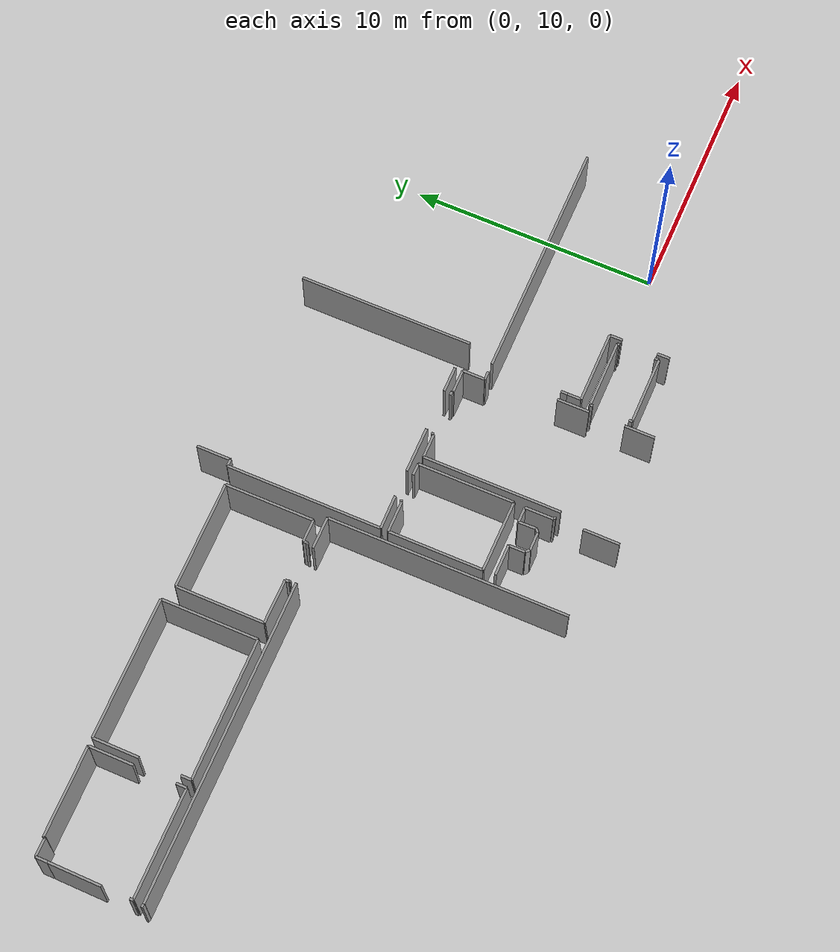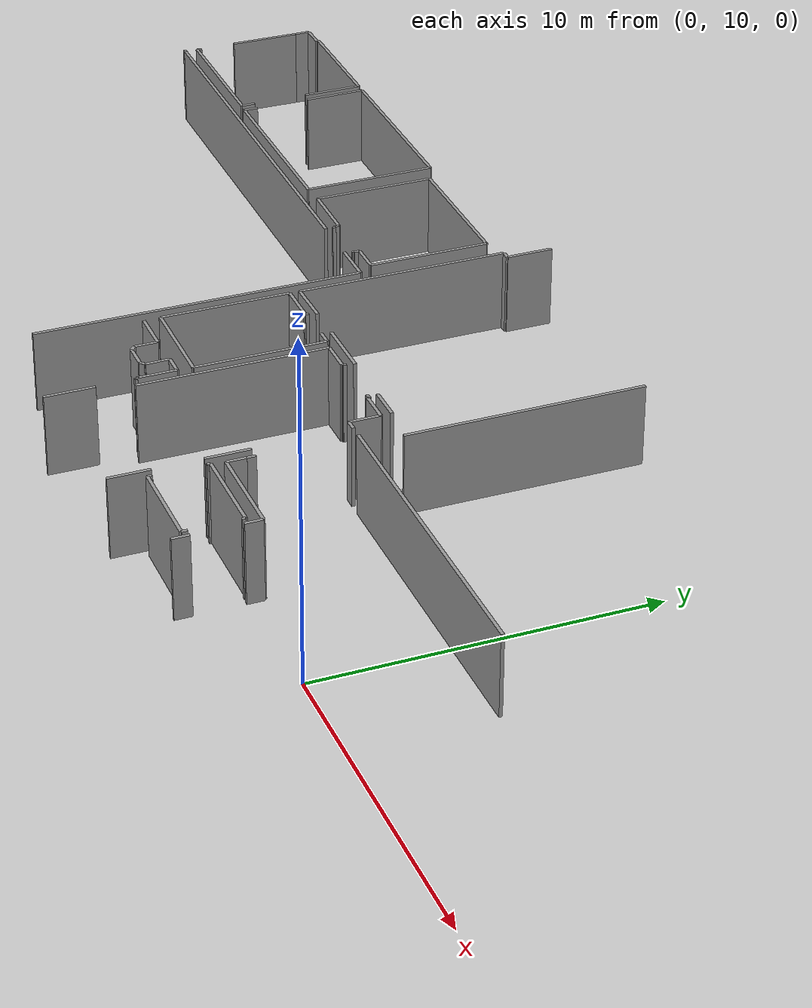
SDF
<sdf version="1.6">
 <world name="default">
  <model name="ground_plane">
   <static>1</static>
   <link name="link">
    <collision name="collision">
     <geometry><plane><normal>0 0 1</normal><size>100 100</size></plane></geometry>
     <surface><friction><ode><mu>100</mu><mu2>50</mu2></ode></friction></surface>
    </collision>
    <visual name="visual">
     <cast_shadows>0</cast_shadows>
     <geometry><plane><normal>0 0 1</normal><size>100 100</size></plane></geometry>
     <material>
      <script><uri>file://media/materials/scripts/gazebo.material</uri><name>Gazebo/Grey</name></script>
     </material>
    </visual>
   </link>
  </model>
  <model name="0510035739_A_40_1_102">
   <static>1</static>
   <link name="Wall_260">
    <collision name="Wall_260_Collision">
     <geometry><box><size>13.2200164804 0.1 2.5</size></box></geometry>
     <pose>6.61000824022 0 1.25 0 0 0</pose>
    </collision>
    <visual name="Wall_260_Visual">
     <pose>6.61000824022 0 1.25 0 0 0</pose>
     <geometry><box><size>13.2200164804 0.1 2.5</size></box></geometry>
     <material>
      <script><uri>file://media/materials/scripts/gazebo.material</uri><name>Gazebo/Grey</name></script>
      <ambient>1 1 1 1</ambient>
     </material>
    </visual>
    <pose>61.3579427718 -32.5064667277 0 0 0 0.0</pose>
   </link>
   <link name="Wall_261">
    <collision name="Wall_261_Collision">
     <geometry><box><size>1.33244520634 0.1 2.5</size></box></geometry>
     <pose>0.666222603172 0 1.25 0 0 0</pose>
    </collision>
    <visual name="Wall_261_Visual">
     <pose>0.666222603172 0 1.25 0 0 0</pose>
     <geometry><box><size>1.33244520634 0.1 2.5</size></box></geometry>
     <material>
      <script><uri>file://media/materials/scripts/gazebo.material</uri><name>Gazebo/Grey</name></script>
      <ambient>1 1 1 1</ambient>
     </material>
    </visual>
    <pose>76.0976243452 -32.5064667277 0 0 0 0.0</pose>
   </link>
   <link name="Wall_262">
    <collision name="Wall_262_Collision">
     <geometry><box><size>9.85795487109 0.1 2.5</size></box></geometry>
     <pose>4.92897743555 0 1.25 0 0 0</pose>
    </collision>
    <visual name="Wall_262_Visual">
     <pose>4.92897743555 0 1.25 0 0 0</pose>
     <geometry><box><size>9.85795487109 0.1 2.5</size></box></geometry>
     <material>
      <script><uri>file://media/materials/scripts/gazebo.material</uri><name>Gazebo/Grey</name></script>
      <ambient>1 1 1 1</ambient>
     </material>
    </visual>
    <pose>77.4300695516 -32.5064667277 0 0 0 -1.57079632679</pose>
   </link>
   <link name="Wall_271">
    <collision name="Wall_271_Collision">
     <geometry><box><size>0.143887569685 0.1 2.5</size></box></geometry>
     <pose>0.0719437848426 0 1.25 0 0 0</pose>
    </collision>
    <visual name="Wall_271_Visual">
     <pose>0.0719437848426 0 1.25 0 0 0</pose>
     <geometry><box><size>0.143887569685 0.1 2.5</size></box></geometry>
     <material>
      <script><uri>file://media/materials/scripts/gazebo.material</uri><name>Gazebo/Grey</name></script>
      <ambient>1 1 1 1</ambient>
     </material>
    </visual>
    <pose>61.2147896069 -32.4919476345 0 0 0 -0.101077846556</pose>
   </link>
   <link name="Wall_272">
    <collision name="Wall_272_Collision">
     <geometry><box><size>0.481167844539 0.1 2.5</size></box></geometry>
     <pose>0.240583922269 0 1.25 0 0 0</pose>
    </collision>
    <visual name="Wall_272_Visual">
     <pose>0.240583922269 0 1.25 0 0 0</pose>
     <geometry><box><size>0.481167844539 0.1 2.5</size></box></geometry>
     <material>
      <script><uri>file://media/materials/scripts/gazebo.material</uri><name>Gazebo/Grey</name></script>
      <ambient>1 1 1 1</ambient>
     </material>
    </visual>
    <pose>61.3579427718 -28.6690958553 0 0 0 1.57079632679</pose>
   </link>
   <link name="Wall_273">
    <collision name="Wall_273_Collision">
     <geometry><box><size>0.759832546458 0.1 2.5</size></box></geometry>
     <pose>0.379916273229 0 1.25 0 0 0</pose>
    </collision>
    <visual name="Wall_273_Visual">
     <pose>0.379916273229 0 1.25 0 0 0</pose>
     <geometry><box><size>0.759832546458 0.1 2.5</size></box></geometry>
     <material>
      <script><uri>file://media/materials/scripts/gazebo.material</uri><name>Gazebo/Grey</name></script>
      <ambient>1 1 1 1</ambient>
     </material>
    </visual>
    <pose>61.3579427718 -28.1879280108 0 0 0 0.0</pose>
   </link>
   <link name="Wall_274">
    <collision name="Wall_274_Collision">
     <geometry><box><size>0.063425512594 0.1 2.5</size></box></geometry>
     <pose>0.031712756297 0 1.25 0 0 0</pose>
    </collision>
    <visual name="Wall_274_Visual">
     <pose>0.031712756297 0 1.25 0 0 0</pose>
     <geometry><box><size>0.063425512594 0.1 2.5</size></box></geometry>
     <material>
      <script><uri>file://media/materials/scripts/gazebo.material</uri><name>Gazebo/Grey</name></script>
      <ambient>1 1 1 1</ambient>
     </material>
    </visual>
    <pose>62.1177753183 -28.1879280108 0 0 0 1.57079632679</pose>
   </link>
   <link name="Wall_275">
    <collision name="Wall_275_Collision">
     <geometry><box><size>3.71051984722 0.1 2.5</size></box></geometry>
     <pose>1.85525992361 0 1.25 0 0 0</pose>
    </collision>
    <visual name="Wall_275_Visual">
     <pose>1.85525992361 0 1.25 0 0 0</pose>
     <geometry><box><size>3.71051984722 0.1 2.5</size></box></geometry>
     <material>
      <script><uri>file://media/materials/scripts/gazebo.material</uri><name>Gazebo/Grey</name></script>
      <ambient>1 1 1 1</ambient>
     </material>
    </visual>
    <pose>62.1177753183 -28.1245024982 0 0 0 0.0</pose>
   </link>
   <link name="Wall_276">
    <collision name="Wall_276_Collision">
     <geometry><box><size>1.82380188825 0.1 2.5</size></box></geometry>
     <pose>0.911900944123 0 1.25 0 0 0</pose>
    </collision>
    <visual name="Wall_276_Visual">
     <pose>0.911900944123 0 1.25 0 0 0</pose>
     <geometry><box><size>1.82380188825 0.1 2.5</size></box></geometry>
     <material>
      <script><uri>file://media/materials/scripts/gazebo.material</uri><name>Gazebo/Grey</name></script>
      <ambient>1 1 1 1</ambient>
     </material>
    </visual>
    <pose>65.8282951655 -28.1245024982 0 0 0 -1.57079632679</pose>
   </link>
   <link name="Wall_277">
    <collision name="Wall_277_Collision">
     <geometry><box><size>0.421308425022 0.1 2.5</size></box></geometry>
     <pose>0.210654212511 0 1.25 0 0 0</pose>
    </collision>
    <visual name="Wall_277_Visual">
     <pose>0.210654212511 0 1.25 0 0 0</pose>
     <geometry><box><size>0.421308425022 0.1 2.5</size></box></geometry>
     <material>
      <script><uri>file://media/materials/scripts/gazebo.material</uri><name>Gazebo/Grey</name></script>
      <ambient>1 1 1 1</ambient>
     </material>
    </visual>
    <pose>65.8282951655 -31.6776048081 0 0 0 -1.57079632679</pose>
   </link>
   <link name="Wall_278">
    <collision name="Wall_278_Collision">
     <geometry><box><size>4.49531504522 0.1 2.5</size></box></geometry>
     <pose>2.24765752261 0 1.25 0 0 0</pose>
    </collision>
    <visual name="Wall_278_Visual">
     <pose>2.24765752261 0 1.25 0 0 0</pose>
     <geometry><box><size>4.49531504522 0.1 2.5</size></box></geometry>
     <material>
      <script><uri>file://media/materials/scripts/gazebo.material</uri><name>Gazebo/Grey</name></script>
      <ambient>1 1 1 1</ambient>
     </material>
    </visual>
    <pose>65.8282951655 -32.0989132331 0 0 0 3.14159265359</pose>
   </link>
   <link name="Wall_279">
    <collision name="Wall_279_Collision">
     <geometry><box><size>0.14366260684 0.1 2.5</size></box></geometry>
     <pose>0.0718313034198 0 1.25 0 0 0</pose>
    </collision>
    <visual name="Wall_279_Visual">
     <pose>0.0718313034198 0 1.25 0 0 0</pose>
     <geometry><box><size>0.14366260684 0.1 2.5</size></box></geometry>
     <material>
      <script><uri>file://media/materials/scripts/gazebo.material</uri><name>Gazebo/Grey</name></script>
      <ambient>1 1 1 1</ambient>
     </material>
    </visual>
    <pose>61.3329801203 -32.0989132331 0 0 0 1.57079632679</pose>
   </link>
   <link name="Wall_280">
    <collision name="Wall_280_Collision">
     <geometry><box><size>2.15686660749 0.1 2.5</size></box></geometry>
     <pose>1.07843330375 0 1.25 0 0 0</pose>
    </collision>
    <visual name="Wall_280_Visual">
     <pose>1.07843330375 0 1.25 0 0 0</pose>
     <geometry><box><size>2.15686660749 0.1 2.5</size></box></geometry>
     <material>
      <script><uri>file://media/materials/scripts/gazebo.material</uri><name>Gazebo/Grey</name></script>
      <ambient>1 1 1 1</ambient>
     </material>
    </visual>
    <pose>61.3329801203 -30.8258180044 0 0 0 1.55922249614</pose>
   </link>
   <link name="Wall_281">
    <collision name="Wall_281_Collision">
     <geometry><box><size>0.429459494914 0.1 2.5</size></box></geometry>
     <pose>0.214729747457 0 1.25 0 0 0</pose>
    </collision>
    <visual name="Wall_281_Visual">
     <pose>0.214729747457 0 1.25 0 0 0</pose>
     <geometry><box><size>0.429459494914 0.1 2.5</size></box></geometry>
     <material>
      <script><uri>file://media/materials/scripts/gazebo.material</uri><name>Gazebo/Grey</name></script>
      <ambient>1 1 1 1</ambient>
     </material>
    </visual>
    <pose>66.1629984729 -32.1363572104 0 0 0 1.57079632679</pose>
   </link>
   <link name="Wall_282">
    <collision name="Wall_282_Collision">
     <geometry><box><size>1.87678384254 0.1 2.5</size></box></geometry>
     <pose>0.938391921271 0 1.25 0 0 0</pose>
    </collision>
    <visual name="Wall_282_Visual">
     <pose>0.938391921271 0 1.25 0 0 0</pose>
     <geometry><box><size>1.87678384254 0.1 2.5</size></box></geometry>
     <material>
      <script><uri>file://media/materials/scripts/gazebo.material</uri><name>Gazebo/Grey</name></script>
      <ambient>1 1 1 1</ambient>
     </material>
    </visual>
    <pose>66.1629984729 -30.0017957826 0 0 0 1.57079632679</pose>
   </link>
   <link name="Wall_283">
    <collision name="Wall_283_Collision">
     <geometry><box><size>5.83743964706 0.1 2.5</size></box></geometry>
     <pose>2.91871982353 0 1.25 0 0 0</pose>
    </collision>
    <visual name="Wall_283_Visual">
     <pose>2.91871982353 0 1.25 0 0 0</pose>
     <geometry><box><size>5.83743964706 0.1 2.5</size></box></geometry>
     <material>
      <script><uri>file://media/materials/scripts/gazebo.material</uri><name>Gazebo/Grey</name></script>
      <ambient>1 1 1 1</ambient>
     </material>
    </visual>
    <pose>66.1629984729 -28.12501194 0 0 0 0.0</pose>
   </link>
   <link name="Wall_284">
    <collision name="Wall_284_Collision">
     <geometry><box><size>3.99198647941 0.1 2.5</size></box></geometry>
     <pose>1.99599323971 0 1.25 0 0 0</pose>
    </collision>
    <visual name="Wall_284_Visual">
     <pose>1.99599323971 0 1.25 0 0 0</pose>
     <geometry><box><size>3.99198647941 0.1 2.5</size></box></geometry>
     <material>
      <script><uri>file://media/materials/scripts/gazebo.material</uri><name>Gazebo/Grey</name></script>
      <ambient>1 1 1 1</ambient>
     </material>
    </visual>
    <pose>72.00043812 -28.12501194 0 0 0 -1.57079632679</pose>
   </link>
   <link name="Wall_285">
    <collision name="Wall_285_Collision">
     <geometry><box><size>5.8374717469 0.1 2.5</size></box></geometry>
     <pose>2.91873587345 0 1.25 0 0 0</pose>
    </collision>
    <visual name="Wall_285_Visual">
     <pose>2.91873587345 0 1.25 0 0 0</pose>
     <geometry><box><size>5.8374717469 0.1 2.5</size></box></geometry>
     <material>
      <script><uri>file://media/materials/scripts/gazebo.material</uri><name>Gazebo/Grey</name></script>
      <ambient>1 1 1 1</ambient>
     </material>
    </visual>
    <pose>72.00043812 -32.1169984195 0 0 0 -3.13827635035</pose>
   </link>
   <link name="Wall_286">
    <collision name="Wall_286_Collision">
     <geometry><box><size>3.64709433462 0.1 2.5</size></box></geometry>
     <pose>1.82354716731 0 1.25 0 0 0</pose>
    </collision>
    <visual name="Wall_286_Visual">
     <pose>1.82354716731 0 1.25 0 0 0</pose>
     <geometry><box><size>3.64709433462 0.1 2.5</size></box></geometry>
     <material>
      <script><uri>file://media/materials/scripts/gazebo.material</uri><name>Gazebo/Grey</name></script>
      <ambient>1 1 1 1</ambient>
     </material>
    </visual>
    <pose>72.6795241304 -32.0629975814 0 0 0 1.57079632679</pose>
   </link>
   <link name="Wall_287">
    <collision name="Wall_287_Collision">
     <geometry><box><size>4.4451350212 0.1 2.5</size></box></geometry>
     <pose>2.2225675106 0 1.25 0 0 0</pose>
    </collision>
    <visual name="Wall_287_Visual">
     <pose>2.2225675106 0 1.25 0 0 0</pose>
     <geometry><box><size>4.4451350212 0.1 2.5</size></box></geometry>
     <material>
      <script><uri>file://media/materials/scripts/gazebo.material</uri><name>Gazebo/Grey</name></script>
      <ambient>1 1 1 1</ambient>
     </material>
    </visual>
    <pose>72.6795241304 -28.4159032468 0 0 0 0.0</pose>
   </link>
   <link name="Wall_288">
    <collision name="Wall_288_Collision">
     <geometry><box><size>3.64709433462 0.1 2.5</size></box></geometry>
     <pose>1.82354716731 0 1.25 0 0 0</pose>
    </collision>
    <visual name="Wall_288_Visual">
     <pose>1.82354716731 0 1.25 0 0 0</pose>
     <geometry><box><size>3.64709433462 0.1 2.5</size></box></geometry>
     <material>
      <script><uri>file://media/materials/scripts/gazebo.material</uri><name>Gazebo/Grey</name></script>
      <ambient>1 1 1 1</ambient>
     </material>
    </visual>
    <pose>77.1246591516 -28.4159032468 0 0 0 -1.57079632679</pose>
   </link>
   <link name="Wall_289">
    <collision name="Wall_289_Collision">
     <geometry><box><size>0.924382269895 0.1 2.5</size></box></geometry>
     <pose>0.462191134947 0 1.25 0 0 0</pose>
    </collision>
    <visual name="Wall_289_Visual">
     <pose>0.462191134947 0 1.25 0 0 0</pose>
     <geometry><box><size>0.924382269895 0.1 2.5</size></box></geometry>
     <material>
      <script><uri>file://media/materials/scripts/gazebo.material</uri><name>Gazebo/Grey</name></script>
      <ambient>1 1 1 1</ambient>
     </material>
    </visual>
    <pose>77.1246591516 -32.0629975814 0 0 0 3.14159265359</pose>
   </link>
   <link name="Wall_290">
    <collision name="Wall_290_Collision">
     <geometry><box><size>0.177285770142 0.1 2.5</size></box></geometry>
     <pose>0.0886428850712 0 1.25 0 0 0</pose>
    </collision>
    <visual name="Wall_290_Visual">
     <pose>0.0886428850712 0 1.25 0 0 0</pose>
     <geometry><box><size>0.177285770142 0.1 2.5</size></box></geometry>
     <material>
      <script><uri>file://media/materials/scripts/gazebo.material</uri><name>Gazebo/Grey</name></script>
      <ambient>1 1 1 1</ambient>
     </material>
    </visual>
    <pose>76.2002768817 -32.0629975814 0 0 0 -1.57079632679</pose>
   </link>
   <link name="Wall_291">
    <collision name="Wall_291_Collision">
     <geometry><box><size>0.0634255125941 0.1 2.5</size></box></geometry>
     <pose>0.031712756297 0 1.25 0 0 0</pose>
    </collision>
    <visual name="Wall_291_Visual">
     <pose>0.031712756297 0 1.25 0 0 0</pose>
     <geometry><box><size>0.0634255125941 0.1 2.5</size></box></geometry>
     <material>
      <script><uri>file://media/materials/scripts/gazebo.material</uri><name>Gazebo/Grey</name></script>
      <ambient>1 1 1 1</ambient>
     </material>
    </visual>
    <pose>76.2002768817 -32.2402833516 0 0 0 3.14159265359</pose>
   </link>
   <link name="Wall_292">
    <collision name="Wall_292_Collision">
     <geometry><box><size>0.0669916056716 0.1 2.5</size></box></geometry>
     <pose>0.0334958028358 0 1.25 0 0 0</pose>
    </collision>
    <visual name="Wall_292_Visual">
     <pose>0.0334958028358 0 1.25 0 0 0</pose>
     <geometry><box><size>0.0669916056716 0.1 2.5</size></box></geometry>
     <material>
      <script><uri>file://media/materials/scripts/gazebo.material</uri><name>Gazebo/Grey</name></script>
      <ambient>1 1 1 1</ambient>
     </material>
    </visual>
    <pose>74.5955349967 -32.2402833516 0 0 0 3.14159265359</pose>
   </link>
   <link name="Wall_293">
    <collision name="Wall_293_Collision">
     <geometry><box><size>0.160474188491 0.1 2.5</size></box></geometry>
     <pose>0.0802370942455 0 1.25 0 0 0</pose>
    </collision>
    <visual name="Wall_293_Visual">
     <pose>0.0802370942455 0 1.25 0 0 0</pose>
     <geometry><box><size>0.160474188491 0.1 2.5</size></box></geometry>
     <material>
      <script><uri>file://media/materials/scripts/gazebo.material</uri><name>Gazebo/Grey</name></script>
      <ambient>1 1 1 1</ambient>
     </material>
    </visual>
    <pose>74.5285433911 -32.2402833516 0 0 0 1.57079632679</pose>
   </link>
   <link name="Wall_294">
    <collision name="Wall_294_Collision">
     <geometry><box><size>1.84909568595 0.1 2.5</size></box></geometry>
     <pose>0.924547842976 0 1.25 0 0 0</pose>
    </collision>
    <visual name="Wall_294_Visual">
     <pose>0.924547842976 0 1.25 0 0 0</pose>
     <geometry><box><size>1.84909568595 0.1 2.5</size></box></geometry>
     <material>
      <script><uri>file://media/materials/scripts/gazebo.material</uri><name>Gazebo/Grey</name></script>
      <ambient>1 1 1 1</ambient>
     </material>
    </visual>
    <pose>74.5285433911 -32.0798091631 0 0 0 3.13250074266</pose>
   </link>
   <link name="Wall_386">
    <collision name="Wall_386_Collision">
     <geometry><box><size>5.66244636532 0.1 2.5</size></box></geometry>
     <pose>2.83122318266 0 1.25 0 0 0</pose>
    </collision>
    <visual name="Wall_386_Visual">
     <pose>2.83122318266 0 1.25 0 0 0</pose>
     <geometry><box><size>5.66244636532 0.1 2.5</size></box></geometry>
     <material>
      <script><uri>file://media/materials/scripts/gazebo.material</uri><name>Gazebo/Grey</name></script>
      <ambient>1 1 1 1</ambient>
     </material>
    </visual>
    <pose>81.139825236 -40.5192231521 0 0 0 1.57079632679</pose>
   </link>
   <link name="Wall_387">
    <collision name="Wall_387_Collision">
     <geometry><box><size>0.983732247543 0.1 2.5</size></box></geometry>
     <pose>0.491866123771 0 1.25 0 0 0</pose>
    </collision>
    <visual name="Wall_387_Visual">
     <pose>0.491866123771 0 1.25 0 0 0</pose>
     <geometry><box><size>0.983732247543 0.1 2.5</size></box></geometry>
     <material>
      <script><uri>file://media/materials/scripts/gazebo.material</uri><name>Gazebo/Grey</name></script>
      <ambient>1 1 1 1</ambient>
     </material>
    </visual>
    <pose>81.139825236 -34.8567767868 0 0 0 0.0</pose>
   </link>
   <link name="Wall_388">
    <collision name="Wall_388_Collision">
     <geometry><box><size>0.0664821638034 0.1 2.5</size></box></geometry>
     <pose>0.0332410819017 0 1.25 0 0 0</pose>
    </collision>
    <visual name="Wall_388_Visual">
     <pose>0.0332410819017 0 1.25 0 0 0</pose>
     <geometry><box><size>0.0664821638034 0.1 2.5</size></box></geometry>
     <material>
      <script><uri>file://media/materials/scripts/gazebo.material</uri><name>Gazebo/Grey</name></script>
      <ambient>1 1 1 1</ambient>
     </material>
    </visual>
    <pose>82.1235574835 -34.8567767868 0 0 0 1.57079632679</pose>
   </link>
   <link name="Wall_389">
    <collision name="Wall_389_Collision">
     <geometry><box><size>0.0832937454548 0.1 2.5</size></box></geometry>
     <pose>0.0416468727274 0 1.25 0 0 0</pose>
    </collision>
    <visual name="Wall_389_Visual">
     <pose>0.0416468727274 0 1.25 0 0 0</pose>
     <geometry><box><size>0.0832937454548 0.1 2.5</size></box></geometry>
     <material>
      <script><uri>file://media/materials/scripts/gazebo.material</uri><name>Gazebo/Grey</name></script>
      <ambient>1 1 1 1</ambient>
     </material>
    </visual>
    <pose>82.1235574835 -34.790294623 0 0 0 0.0</pose>
   </link>
   <link name="Wall_390">
    <collision name="Wall_390_Collision">
     <geometry><box><size>0.158181700084 0.1 2.5</size></box></geometry>
     <pose>0.079090850042 0 1.25 0 0 0</pose>
    </collision>
    <visual name="Wall_390_Visual">
     <pose>0.079090850042 0 1.25 0 0 0</pose>
     <geometry><box><size>0.158181700084 0.1 2.5</size></box></geometry>
     <material>
      <script><uri>file://media/materials/scripts/gazebo.material</uri><name>Gazebo/Grey</name></script>
      <ambient>1 1 1 1</ambient>
     </material>
    </visual>
    <pose>83.8971793477 -34.790294623 0 0 0 0.0</pose>
   </link>
   <link name="Wall_391">
    <collision name="Wall_391_Collision">
     <geometry><box><size>0.0415195122604 0.1 2.5</size></box></geometry>
     <pose>0.0207597561302 0 1.25 0 0 0</pose>
    </collision>
    <visual name="Wall_391_Visual">
     <pose>0.0207597561302 0 1.25 0 0 0</pose>
     <geometry><box><size>0.0415195122604 0.1 2.5</size></box></geometry>
     <material>
      <script><uri>file://media/materials/scripts/gazebo.material</uri><name>Gazebo/Grey</name></script>
      <ambient>1 1 1 1</ambient>
     </material>
    </visual>
    <pose>84.0553610478 -34.790294623 0 0 0 -1.57079632679</pose>
   </link>
   <link name="Wall_392">
    <collision name="Wall_392_Collision">
     <geometry><box><size>0.974307572981 0.1 2.5</size></box></geometry>
     <pose>0.48715378649 0 1.25 0 0 0</pose>
    </collision>
    <visual name="Wall_392_Visual">
     <pose>0.48715378649 0 1.25 0 0 0</pose>
     <geometry><box><size>0.974307572981 0.1 2.5</size></box></geometry>
     <material>
      <script><uri>file://media/materials/scripts/gazebo.material</uri><name>Gazebo/Grey</name></script>
      <ambient>1 1 1 1</ambient>
     </material>
    </visual>
    <pose>84.0553610478 -34.8318141352 0 0 0 0.0</pose>
   </link>
   <link name="Wall_393">
    <collision name="Wall_393_Collision">
     <geometry><box><size>0.919797293081 0.1 2.5</size></box></geometry>
     <pose>0.45989864654 0 1.25 0 0 0</pose>
    </collision>
    <visual name="Wall_393_Visual">
     <pose>0.45989864654 0 1.25 0 0 0</pose>
     <geometry><box><size>0.919797293081 0.1 2.5</size></box></geometry>
     <material>
      <script><uri>file://media/materials/scripts/gazebo.material</uri><name>Gazebo/Grey</name></script>
      <ambient>1 1 1 1</ambient>
     </material>
    </visual>
    <pose>85.0296686208 -34.8318141352 0 0 0 -1.57079632679</pose>
   </link>
   <link name="Wall_394">
    <collision name="Wall_394_Collision">
     <geometry><box><size>0.34005244704 0.1 2.5</size></box></geometry>
     <pose>0.17002622352 0 1.25 0 0 0</pose>
    </collision>
    <visual name="Wall_394_Visual">
     <pose>0.17002622352 0 1.25 0 0 0</pose>
     <geometry><box><size>0.34005244704 0.1 2.5</size></box></geometry>
     <material>
      <script><uri>file://media/materials/scripts/gazebo.material</uri><name>Gazebo/Grey</name></script>
      <ambient>1 1 1 1</ambient>
     </material>
    </visual>
    <pose>85.0296686208 -35.7516114283 0 0 0 0.0</pose>
   </link>
   <link name="Wall_395">
    <collision name="Wall_395_Collision">
     <geometry><box><size>1.31767139216 0.1 2.5</size></box></geometry>
     <pose>0.658835696082 0 1.25 0 0 0</pose>
    </collision>
    <visual name="Wall_395_Visual">
     <pose>0.658835696082 0 1.25 0 0 0</pose>
     <geometry><box><size>1.31767139216 0.1 2.5</size></box></geometry>
     <material>
      <script><uri>file://media/materials/scripts/gazebo.material</uri><name>Gazebo/Grey</name></script>
      <ambient>1 1 1 1</ambient>
     </material>
    </visual>
    <pose>85.3697210678 -38.6373448909 0 0 0 -1.57079632679</pose>
   </link>
   <link name="Wall_396">
    <collision name="Wall_396_Collision">
     <geometry><box><size>1.23183043737 0.1 2.5</size></box></geometry>
     <pose>0.615915218684 0 1.25 0 0 0</pose>
    </collision>
    <visual name="Wall_396_Visual">
     <pose>0.615915218684 0 1.25 0 0 0</pose>
     <geometry><box><size>1.23183043737 0.1 2.5</size></box></geometry>
     <material>
      <script><uri>file://media/materials/scripts/gazebo.material</uri><name>Gazebo/Grey</name></script>
      <ambient>1 1 1 1</ambient>
     </material>
    </visual>
    <pose>85.3697210678 -41.4227183054 0 0 0 -1.57079632679</pose>
   </link>
   <link name="Wall_401">
    <collision name="Wall_401_Collision">
     <geometry><box><size>3.88806033829 0.1 2.5</size></box></geometry>
     <pose>1.94403016915 0 1.25 0 0 0</pose>
    </collision>
    <visual name="Wall_401_Visual">
     <pose>1.94403016915 0 1.25 0 0 0</pose>
     <geometry><box><size>3.88806033829 0.1 2.5</size></box></geometry>
     <material>
      <script><uri>file://media/materials/scripts/gazebo.material</uri><name>Gazebo/Grey</name></script>
      <ambient>1 1 1 1</ambient>
     </material>
    </visual>
    <pose>77.8350758368 -38.7206386363 0 0 0 1.57079632679</pose>
   </link>
   <link name="Wall_402">
    <collision name="Wall_402_Collision">
     <geometry><box><size>1.28939736848 0.1 2.5</size></box></geometry>
     <pose>0.644698684239 0 1.25 0 0 0</pose>
    </collision>
    <visual name="Wall_402_Visual">
     <pose>0.644698684239 0 1.25 0 0 0</pose>
     <geometry><box><size>1.28939736848 0.1 2.5</size></box></geometry>
     <material>
      <script><uri>file://media/materials/scripts/gazebo.material</uri><name>Gazebo/Grey</name></script>
      <ambient>1 1 1 1</ambient>
     </material>
    </visual>
    <pose>77.8350758368 -34.832578298 0 0 0 0.0</pose>
   </link>
   <link name="Wall_403">
    <collision name="Wall_403_Collision">
     <geometry><box><size>0.0433025587991 0.1 2.5</size></box></geometry>
     <pose>0.0216512793996 0 1.25 0 0 0</pose>
    </collision>
    <visual name="Wall_403_Visual">
     <pose>0.0216512793996 0 1.25 0 0 0</pose>
     <geometry><box><size>0.0433025587991 0.1 2.5</size></box></geometry>
     <material>
      <script><uri>file://media/materials/scripts/gazebo.material</uri><name>Gazebo/Grey</name></script>
      <ambient>1 1 1 1</ambient>
     </material>
    </visual>
    <pose>79.1244732053 -34.832578298 0 0 0 1.57079632679</pose>
   </link>
   <link name="Wall_404">
    <collision name="Wall_404_Collision">
     <geometry><box><size>0.0794729314431 0.1 2.5</size></box></geometry>
     <pose>0.0397364657216 0 1.25 0 0 0</pose>
    </collision>
    <visual name="Wall_404_Visual">
     <pose>0.0397364657216 0 1.25 0 0 0</pose>
     <geometry><box><size>0.0794729314431 0.1 2.5</size></box></geometry>
     <material>
      <script><uri>file://media/materials/scripts/gazebo.material</uri><name>Gazebo/Grey</name></script>
      <ambient>1 1 1 1</ambient>
     </material>
    </visual>
    <pose>79.1244732053 -34.7892757392 0 0 0 0.0</pose>
   </link>
   <link name="Wall_405">
    <collision name="Wall_405_Collision">
     <geometry><box><size>0.48498865855 0.1 2.5</size></box></geometry>
     <pose>0.242494329275 0 1.25 0 0 0</pose>
    </collision>
    <visual name="Wall_405_Visual">
     <pose>0.242494329275 0 1.25 0 0 0</pose>
     <geometry><box><size>0.48498865855 0.1 2.5</size></box></geometry>
     <material>
      <script><uri>file://media/materials/scripts/gazebo.material</uri><name>Gazebo/Grey</name></script>
      <ambient>1 1 1 1</ambient>
     </material>
    </visual>
    <pose>80.3119822001 -34.7892757392 0 0 0 0.0</pose>
   </link>
   <link name="Wall_406">
    <collision name="Wall_406_Collision">
     <geometry><box><size>3.94842919968 0.1 2.5</size></box></geometry>
     <pose>1.97421459984 0 1.25 0 0 0</pose>
    </collision>
    <visual name="Wall_406_Visual">
     <pose>1.97421459984 0 1.25 0 0 0</pose>
     <geometry><box><size>3.94842919968 0.1 2.5</size></box></geometry>
     <material>
      <script><uri>file://media/materials/scripts/gazebo.material</uri><name>Gazebo/Grey</name></script>
      <ambient>1 1 1 1</ambient>
     </material>
    </visual>
    <pose>80.7969708587 -34.7892757392 0 0 0 -1.57079632679</pose>
   </link>
   <link name="Wall_407">
    <collision name="Wall_407_Collision">
     <geometry><box><size>2.96194418908 0.1 2.5</size></box></geometry>
     <pose>1.48097209454 0 1.25 0 0 0</pose>
    </collision>
    <visual name="Wall_407_Visual">
     <pose>1.48097209454 0 1.25 0 0 0</pose>
     <geometry><box><size>2.96194418908 0.1 2.5</size></box></geometry>
     <material>
      <script><uri>file://media/materials/scripts/gazebo.material</uri><name>Gazebo/Grey</name></script>
      <ambient>1 1 1 1</ambient>
     </material>
    </visual>
    <pose>80.7969708587 -38.7377049389 0 0 0 3.13583076345</pose>
   </link>
   <link name="Wall_409">
    <collision name="Wall_409_Collision">
     <geometry><box><size>1.28175574045 0.1 2.5</size></box></geometry>
     <pose>0.640877870227 0 1.25 0 0 0</pose>
    </collision>
    <visual name="Wall_409_Visual">
     <pose>0.640877870227 0 1.25 0 0 0</pose>
     <geometry><box><size>1.28175574045 0.1 2.5</size></box></geometry>
     <material>
      <script><uri>file://media/materials/scripts/gazebo.material</uri><name>Gazebo/Grey</name></script>
      <ambient>1 1 1 1</ambient>
     </material>
    </visual>
    <pose>77.8427174648 -39.2204011091 0 0 0 0.0</pose>
   </link>
   <link name="Wall_410">
    <collision name="Wall_410_Collision">
     <geometry><box><size>0.673482149794 0.1 2.5</size></box></geometry>
     <pose>0.336741074897 0 1.25 0 0 0</pose>
    </collision>
    <visual name="Wall_410_Visual">
     <pose>0.336741074897 0 1.25 0 0 0</pose>
     <geometry><box><size>0.673482149794 0.1 2.5</size></box></geometry>
     <material>
      <script><uri>file://media/materials/scripts/gazebo.material</uri><name>Gazebo/Grey</name></script>
      <ambient>1 1 1 1</ambient>
     </material>
    </visual>
    <pose>79.1244732053 -39.2204011091 0 0 0 -1.57079632679</pose>
   </link>
   <link name="Wall_411">
    <collision name="Wall_411_Collision">
     <geometry><box><size>0.199631021793 0.1 2.5</size></box></geometry>
     <pose>0.0998155108963 0 1.25 0 0 0</pose>
    </collision>
    <visual name="Wall_411_Visual">
     <pose>0.0998155108963 0 1.25 0 0 0</pose>
     <geometry><box><size>0.199631021793 0.1 2.5</size></box></geometry>
     <material>
      <script><uri>file://media/materials/scripts/gazebo.material</uri><name>Gazebo/Grey</name></script>
      <ambient>1 1 1 1</ambient>
     </material>
    </visual>
    <pose>79.1244732053 -39.8938832588 0 0 0 -0.760132782611</pose>
   </link>
   <link name="Wall_412">
    <collision name="Wall_412_Collision">
     <geometry><box><size>0.752955081237 0.1 2.5</size></box></geometry>
     <pose>0.376477540618 0 1.25 0 0 0</pose>
    </collision>
    <visual name="Wall_412_Visual">
     <pose>0.376477540618 0 1.25 0 0 0</pose>
     <geometry><box><size>0.752955081237 0.1 2.5</size></box></geometry>
     <material>
      <script><uri>file://media/materials/scripts/gazebo.material</uri><name>Gazebo/Grey</name></script>
      <ambient>1 1 1 1</ambient>
     </material>
    </visual>
    <pose>79.2691546958 -40.0314325633 0 0 0 0.0</pose>
   </link>
   <link name="Wall_413">
    <collision name="Wall_413_Collision">
     <geometry><box><size>0.174473427606 0.1 2.5</size></box></geometry>
     <pose>0.0872367138029 0 1.25 0 0 0</pose>
    </collision>
    <visual name="Wall_413_Visual">
     <pose>0.0872367138029 0 1.25 0 0 0</pose>
     <geometry><box><size>0.174473427606 0.1 2.5</size></box></geometry>
     <material>
      <script><uri>file://media/materials/scripts/gazebo.material</uri><name>Gazebo/Grey</name></script>
      <ambient>1 1 1 1</ambient>
     </material>
    </visual>
    <pose>80.0221097771 -40.0314325633 0 0 0 0.726521099169</pose>
   </link>
   <link name="Wall_414">
    <collision name="Wall_414_Collision">
     <geometry><box><size>0.716931741898 0.1 2.5</size></box></geometry>
     <pose>0.358465870949 0 1.25 0 0 0</pose>
    </collision>
    <visual name="Wall_414_Visual">
     <pose>0.358465870949 0 1.25 0 0 0</pose>
     <geometry><box><size>0.716931741898 0.1 2.5</size></box></geometry>
     <material>
      <script><uri>file://media/materials/scripts/gazebo.material</uri><name>Gazebo/Grey</name></script>
      <ambient>1 1 1 1</ambient>
     </material>
    </visual>
    <pose>80.1525268953 -39.9155345382 0 0 0 1.59104942069</pose>
   </link>
   <link name="Wall_415">
    <collision name="Wall_415_Collision">
     <geometry><box><size>0.63731177715 0.1 2.5</size></box></geometry>
     <pose>0.318655888575 0 1.25 0 0 0</pose>
    </collision>
    <visual name="Wall_415_Visual">
     <pose>0.318655888575 0 1.25 0 0 0</pose>
     <geometry><box><size>0.63731177715 0.1 2.5</size></box></geometry>
     <material>
      <script><uri>file://media/materials/scripts/gazebo.material</uri><name>Gazebo/Grey</name></script>
      <ambient>1 1 1 1</ambient>
     </material>
    </visual>
    <pose>80.1380078021 -39.1987498297 0 0 0 0.0</pose>
   </link>
   <link name="Wall_416">
    <collision name="Wall_416_Collision">
     <geometry><box><size>1.15974441301 0.1 2.5</size></box></geometry>
     <pose>0.579872206507 0 1.25 0 0 0</pose>
    </collision>
    <visual name="Wall_416_Visual">
     <pose>0.579872206507 0 1.25 0 0 0</pose>
     <geometry><box><size>1.15974441301 0.1 2.5</size></box></geometry>
     <material>
      <script><uri>file://media/materials/scripts/gazebo.material</uri><name>Gazebo/Grey</name></script>
      <ambient>1 1 1 1</ambient>
     </material>
    </visual>
    <pose>80.7753195793 -39.1987498297 0 0 0 -1.57079632679</pose>
   </link>
   <link name="Wall_417">
    <collision name="Wall_417_Collision">
     <geometry><box><size>0.0466139309426 0.1 2.5</size></box></geometry>
     <pose>0.0233069654713 0 1.25 0 0 0</pose>
    </collision>
    <visual name="Wall_417_Visual">
     <pose>0.0233069654713 0 1.25 0 0 0</pose>
     <geometry><box><size>0.0466139309426 0.1 2.5</size></box></geometry>
     <material>
      <script><uri>file://media/materials/scripts/gazebo.material</uri><name>Gazebo/Grey</name></script>
      <ambient>1 1 1 1</ambient>
     </material>
    </visual>
    <pose>80.7753195793 -40.3584942427 0 0 0 0.0</pose>
   </link>
   <link name="Wall_418">
    <collision name="Wall_418_Collision">
     <geometry><box><size>0.0827843035866 0.1 2.5</size></box></geometry>
     <pose>0.0413921517933 0 1.25 0 0 0</pose>
    </collision>
    <visual name="Wall_418_Visual">
     <pose>0.0413921517933 0 1.25 0 0 0</pose>
     <geometry><box><size>0.0827843035866 0.1 2.5</size></box></geometry>
     <material>
      <script><uri>file://media/materials/scripts/gazebo.material</uri><name>Gazebo/Grey</name></script>
      <ambient>1 1 1 1</ambient>
     </material>
    </visual>
    <pose>80.8219335102 -40.3584942427 0 0 0 -1.57079632679</pose>
   </link>
   <link name="Wall_419">
    <collision name="Wall_419_Collision">
     <geometry><box><size>1.49088162736 0.1 2.5</size></box></geometry>
     <pose>0.745440813681 0 1.25 0 0 0</pose>
    </collision>
    <visual name="Wall_419_Visual">
     <pose>0.745440813681 0 1.25 0 0 0</pose>
     <geometry><box><size>1.49088162736 0.1 2.5</size></box></geometry>
     <material>
      <script><uri>file://media/materials/scripts/gazebo.material</uri><name>Gazebo/Grey</name></script>
      <ambient>1 1 1 1</ambient>
     </material>
    </visual>
    <pose>80.8219335102 -41.5538995865 0 0 0 -1.57079632679</pose>
   </link>
   <link name="Wall_423">
    <collision name="Wall_423_Collision">
     <geometry><box><size>6.36955167842 0.1 2.5</size></box></geometry>
     <pose>3.18477583921 0 1.25 0 0 0</pose>
    </collision>
    <visual name="Wall_423_Visual">
     <pose>3.18477583921 0 1.25 0 0 0</pose>
     <geometry><box><size>6.36955167842 0.1 2.5</size></box></geometry>
     <material>
      <script><uri>file://media/materials/scripts/gazebo.material</uri><name>Gazebo/Grey</name></script>
      <ambient>1 1 1 1</ambient>
     </material>
    </visual>
    <pose>77.8401702555 -34.5281867818 0 0 0 1.57079632679</pose>
   </link>
   <link name="Wall_424">
    <collision name="Wall_424_Collision">
     <geometry><box><size>0.274589166973 0.1 2.5</size></box></geometry>
     <pose>0.137294583487 0 1.25 0 0 0</pose>
    </collision>
    <visual name="Wall_424_Visual">
     <pose>0.137294583487 0 1.25 0 0 0</pose>
     <geometry><box><size>0.274589166973 0.1 2.5</size></box></geometry>
     <material>
      <script><uri>file://media/materials/scripts/gazebo.material</uri><name>Gazebo/Grey</name></script>
      <ambient>1 1 1 1</ambient>
     </material>
    </visual>
    <pose>77.8401702555 -28.1586351033 0 0 0 0.0</pose>
   </link>
   <link name="Wall_425">
    <collision name="Wall_425_Collision">
     <geometry><box><size>1.4068237191 0.1 2.5</size></box></geometry>
     <pose>0.703411859552 0 1.25 0 0 0</pose>
    </collision>
    <visual name="Wall_425_Visual">
     <pose>0.703411859552 0 1.25 0 0 0</pose>
     <geometry><box><size>1.4068237191 0.1 2.5</size></box></geometry>
     <material>
      <script><uri>file://media/materials/scripts/gazebo.material</uri><name>Gazebo/Grey</name></script>
      <ambient>1 1 1 1</ambient>
     </material>
    </visual>
    <pose>78.1147594224 -28.1586351033 0 0 0 1.57079632679</pose>
   </link>
   <link name="Wall_433">
    <collision name="Wall_433_Collision">
     <geometry><box><size>1.05785603937 0.1 2.5</size></box></geometry>
     <pose>0.528928019685 0 1.25 0 0 0</pose>
    </collision>
    <visual name="Wall_433_Visual">
     <pose>0.528928019685 0 1.25 0 0 0</pose>
     <geometry><box><size>1.05785603937 0.1 2.5</size></box></geometry>
     <material>
      <script><uri>file://media/materials/scripts/gazebo.material</uri><name>Gazebo/Grey</name></script>
      <ambient>1 1 1 1</ambient>
     </material>
    </visual>
    <pose>85.02126283 -34.5072996652 0 0 0 3.14159265359</pose>
   </link>
   <link name="Wall_434">
    <collision name="Wall_434_Collision">
     <geometry><box><size>1.88977461018 0.1 2.5</size></box></geometry>
     <pose>0.944887305091 0 1.25 0 0 0</pose>
    </collision>
    <visual name="Wall_434_Visual">
     <pose>0.944887305091 0 1.25 0 0 0</pose>
     <geometry><box><size>1.88977461018 0.1 2.5</size></box></geometry>
     <material>
      <script><uri>file://media/materials/scripts/gazebo.material</uri><name>Gazebo/Grey</name></script>
      <ambient>1 1 1 1</ambient>
     </material>
    </visual>
    <pose>82.2450593691 -34.5072996652 0 0 0 3.14159265359</pose>
   </link>
   <link name="Wall_435">
    <collision name="Wall_435_Collision">
     <geometry><box><size>1.40494122352 0.1 2.5</size></box></geometry>
     <pose>0.702470611759 0 1.25 0 0 0</pose>
    </collision>
    <visual name="Wall_435_Visual">
     <pose>0.702470611759 0 1.25 0 0 0</pose>
     <geometry><box><size>1.40494122352 0.1 2.5</size></box></geometry>
     <material>
      <script><uri>file://media/materials/scripts/gazebo.material</uri><name>Gazebo/Grey</name></script>
      <ambient>1 1 1 1</ambient>
     </material>
    </visual>
    <pose>79.2449562071 -34.5072996652 0 0 0 -3.12672520878</pose>
   </link>
   <link name="Wall_436">
    <collision name="Wall_436_Collision">
     <geometry><box><size>0.133983211343 0.1 2.5</size></box></geometry>
     <pose>0.0669916056716 0 1.25 0 0 0</pose>
    </collision>
    <visual name="Wall_436_Visual">
     <pose>0.0669916056716 0 1.25 0 0 0</pose>
     <geometry><box><size>0.133983211343 0.1 2.5</size></box></geometry>
     <material>
      <script><uri>file://media/materials/scripts/gazebo.material</uri><name>Gazebo/Grey</name></script>
      <ambient>1 1 1 1</ambient>
     </material>
    </visual>
    <pose>85.6557726768 -41.6173250991 0 0 0 1.57079632679</pose>
   </link>
   <link name="Wall_437">
    <collision name="Wall_437_Collision">
     <geometry><box><size>0.106982792327 0.1 2.5</size></box></geometry>
     <pose>0.0534913961636 0 1.25 0 0 0</pose>
    </collision>
    <visual name="Wall_437_Visual">
     <pose>0.0534913961636 0 1.25 0 0 0</pose>
     <geometry><box><size>0.106982792327 0.1 2.5</size></box></geometry>
     <material>
      <script><uri>file://media/materials/scripts/gazebo.material</uri><name>Gazebo/Grey</name></script>
      <ambient>1 1 1 1</ambient>
     </material>
    </visual>
    <pose>85.6557726768 -39.9848186323 0 0 0 1.57079632679</pose>
   </link>
   <link name="Wall_438">
    <collision name="Wall_438_Collision">
     <geometry><box><size>2.79428864722 0.1 2.5</size></box></geometry>
     <pose>1.39714432361 0 1.25 0 0 0</pose>
    </collision>
    <visual name="Wall_438_Visual">
     <pose>1.39714432361 0 1.25 0 0 0</pose>
     <geometry><box><size>2.79428864722 0.1 2.5</size></box></geometry>
     <material>
      <script><uri>file://media/materials/scripts/gazebo.material</uri><name>Gazebo/Grey</name></script>
      <ambient>1 1 1 1</ambient>
     </material>
    </visual>
    <pose>85.6557726768 -39.87783584 0 0 0 0.0</pose>
   </link>
   <link name="Wall_439">
    <collision name="Wall_439_Collision">
     <geometry><box><size>0.100614768974 0.1 2.5</size></box></geometry>
     <pose>0.0503073844872 0 1.25 0 0 0</pose>
    </collision>
    <visual name="Wall_439_Visual">
     <pose>0.0503073844872 0 1.25 0 0 0</pose>
     <geometry><box><size>0.100614768974 0.1 2.5</size></box></geometry>
     <material>
      <script><uri>file://media/materials/scripts/gazebo.material</uri><name>Gazebo/Grey</name></script>
      <ambient>1 1 1 1</ambient>
     </material>
    </visual>
    <pose>88.4500613241 -39.87783584 0 0 0 -1.57079632679</pose>
   </link>
   <link name="Wall_440">
    <collision name="Wall_440_Collision">
     <geometry><box><size>0.176266886406 0.1 2.5</size></box></geometry>
     <pose>0.088133443203 0 1.25 0 0 0</pose>
    </collision>
    <visual name="Wall_440_Visual">
     <pose>0.088133443203 0 1.25 0 0 0</pose>
     <geometry><box><size>0.176266886406 0.1 2.5</size></box></geometry>
     <material>
      <script><uri>file://media/materials/scripts/gazebo.material</uri><name>Gazebo/Grey</name></script>
      <ambient>1 1 1 1</ambient>
     </material>
    </visual>
    <pose>88.4500613241 -41.4392751661 0 0 0 -1.57079632679</pose>
   </link>
   <link name="Wall_441">
    <collision name="Wall_441_Collision">
     <geometry><box><size>2.7942892161 0.1 2.5</size></box></geometry>
     <pose>1.39714460805 0 1.25 0 0 0</pose>
    </collision>
    <visual name="Wall_441_Visual">
     <pose>1.39714460805 0 1.25 0 0 0</pose>
     <geometry><box><size>2.7942892161 0.1 2.5</size></box></geometry>
     <material>
      <script><uri>file://media/materials/scripts/gazebo.material</uri><name>Gazebo/Grey</name></script>
      <ambient>1 1 1 1</ambient>
     </material>
    </visual>
    <pose>88.4500613241 -41.6155420525 0 0 0 -3.14095454976</pose>
   </link>
   <link name="Wall_475">
    <collision name="Wall_475_Collision">
     <geometry><box><size>7.10722350361 0.1 2.5</size></box></geometry>
     <pose>3.55361175181 0 1.25 0 0 0</pose>
    </collision>
    <visual name="Wall_475_Visual">
     <pose>3.55361175181 0 1.25 0 0 0</pose>
     <geometry><box><size>7.10722350361 0.1 2.5</size></box></geometry>
     <material>
      <script><uri>file://media/materials/scripts/gazebo.material</uri><name>Gazebo/Grey</name></script>
      <ambient>1 1 1 1</ambient>
     </material>
    </visual>
    <pose>86.1922149641 -34.6338959694 0 0 0 1.57079632679</pose>
   </link>
   <link name="Wall_505">
    <collision name="Wall_505_Collision">
     <geometry><box><size>0.517592938117 0.1 2.5</size></box></geometry>
     <pose>0.258796469058 0 1.25 0 0 0</pose>
    </collision>
    <visual name="Wall_505_Visual">
     <pose>0.258796469058 0 1.25 0 0 0</pose>
     <geometry><box><size>0.517592938117 0.1 2.5</size></box></geometry>
     <material>
      <script><uri>file://media/materials/scripts/gazebo.material</uri><name>Gazebo/Grey</name></script>
      <ambient>1 1 1 1</ambient>
     </material>
    </visual>
    <pose>88.6721779786 -41.9703683137 0 0 0 1.57079632679</pose>
   </link>
   <link name="Wall_506">
    <collision name="Wall_506_Collision">
     <geometry><box><size>0.520140147458 0.1 2.5</size></box></geometry>
     <pose>0.260070073729 0 1.25 0 0 0</pose>
    </collision>
    <visual name="Wall_506_Visual">
     <pose>0.260070073729 0 1.25 0 0 0</pose>
     <geometry><box><size>0.520140147458 0.1 2.5</size></box></geometry>
     <material>
      <script><uri>file://media/materials/scripts/gazebo.material</uri><name>Gazebo/Grey</name></script>
      <ambient>1 1 1 1</ambient>
     </material>
    </visual>
    <pose>88.6721779786 -39.993733865 0 0 0 1.57079632679</pose>
   </link>
   <link name="Wall_507">
    <collision name="Wall_507_Collision">
     <geometry><box><size>2.9412626262 0.1 2.5</size></box></geometry>
     <pose>1.4706313131 0 1.25 0 0 0</pose>
    </collision>
    <visual name="Wall_507_Visual">
     <pose>1.4706313131 0 1.25 0 0 0</pose>
     <geometry><box><size>2.9412626262 0.1 2.5</size></box></geometry>
     <material>
      <script><uri>file://media/materials/scripts/gazebo.material</uri><name>Gazebo/Grey</name></script>
      <ambient>1 1 1 1</ambient>
     </material>
    </visual>
    <pose>88.6721779786 -39.4735937176 0 0 0 3.14159265359</pose>
   </link>
   <link name="Wall_508">
    <collision name="Wall_508_Collision">
     <geometry><box><size>0.571339055215 0.1 2.5</size></box></geometry>
     <pose>0.285669527607 0 1.25 0 0 0</pose>
    </collision>
    <visual name="Wall_508_Visual">
     <pose>0.285669527607 0 1.25 0 0 0</pose>
     <geometry><box><size>0.571339055215 0.1 2.5</size></box></geometry>
     <material>
      <script><uri>file://media/materials/scripts/gazebo.material</uri><name>Gazebo/Grey</name></script>
      <ambient>1 1 1 1</ambient>
     </material>
    </visual>
    <pose>85.7309153524 -39.4735937176 0 0 0 1.57079632679</pose>
   </link>
   <link name="Wall_509">
    <collision name="Wall_509_Collision">
     <geometry><box><size>0.267202259884 0.1 2.5</size></box></geometry>
     <pose>0.133601129942 0 1.25 0 0 0</pose>
    </collision>
    <visual name="Wall_509_Visual">
     <pose>0.133601129942 0 1.25 0 0 0</pose>
     <geometry><box><size>0.267202259884 0.1 2.5</size></box></geometry>
     <material>
      <script><uri>file://media/materials/scripts/gazebo.material</uri><name>Gazebo/Grey</name></script>
      <ambient>1 1 1 1</ambient>
     </material>
    </visual>
    <pose>85.7309153524 -38.9022546623 0 0 0 1.57079632679</pose>
   </link>
   <link name="Wall_510">
    <collision name="Wall_510_Collision">
     <geometry><box><size>9.80217098652 0.1 2.5</size></box></geometry>
     <pose>4.90108549326 0 1.25 0 0 0</pose>
    </collision>
    <visual name="Wall_510_Visual">
     <pose>4.90108549326 0 1.25 0 0 0</pose>
     <geometry><box><size>9.80217098652 0.1 2.5</size></box></geometry>
     <material>
      <script><uri>file://media/materials/scripts/gazebo.material</uri><name>Gazebo/Grey</name></script>
      <ambient>1 1 1 1</ambient>
     </material>
    </visual>
    <pose>85.7309153524 -35.7521208702 0 0 0 0.0</pose>
   </link>
   <pose>-92.5 49.8157534709 0 0 0 0</pose>
  </model>
 </world>
</sdf>
